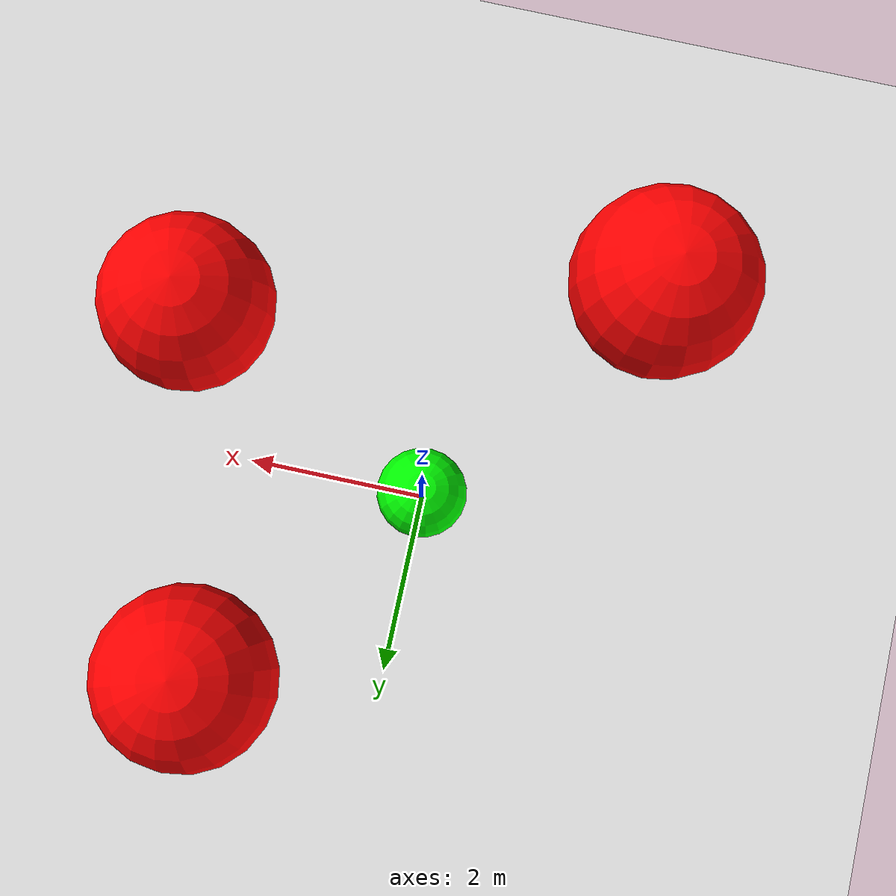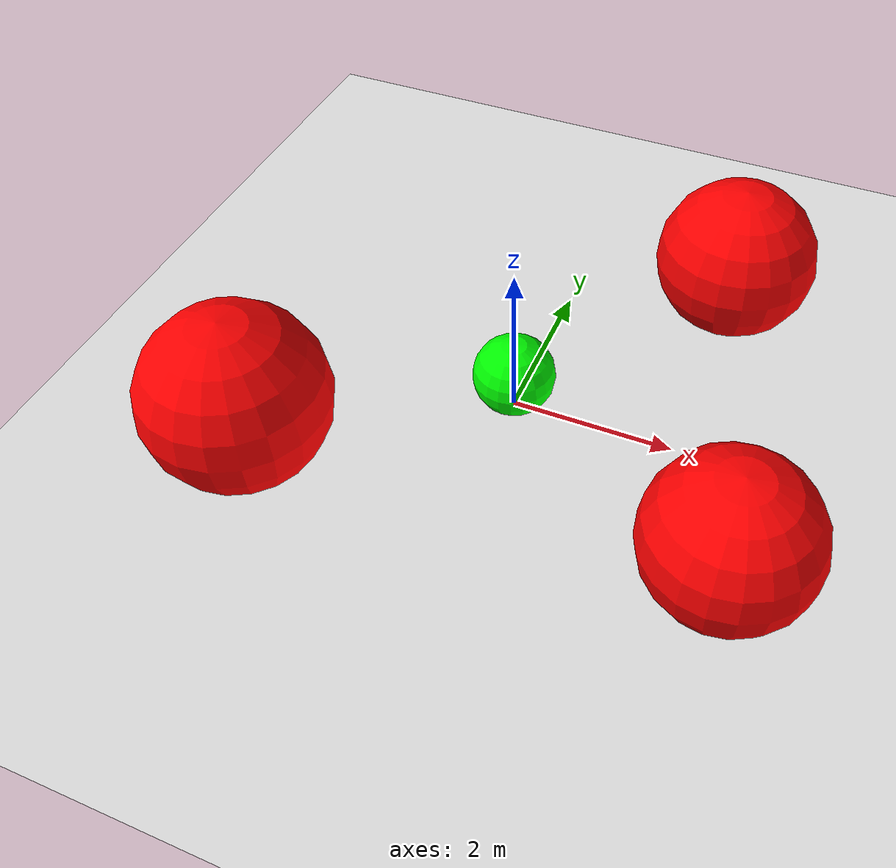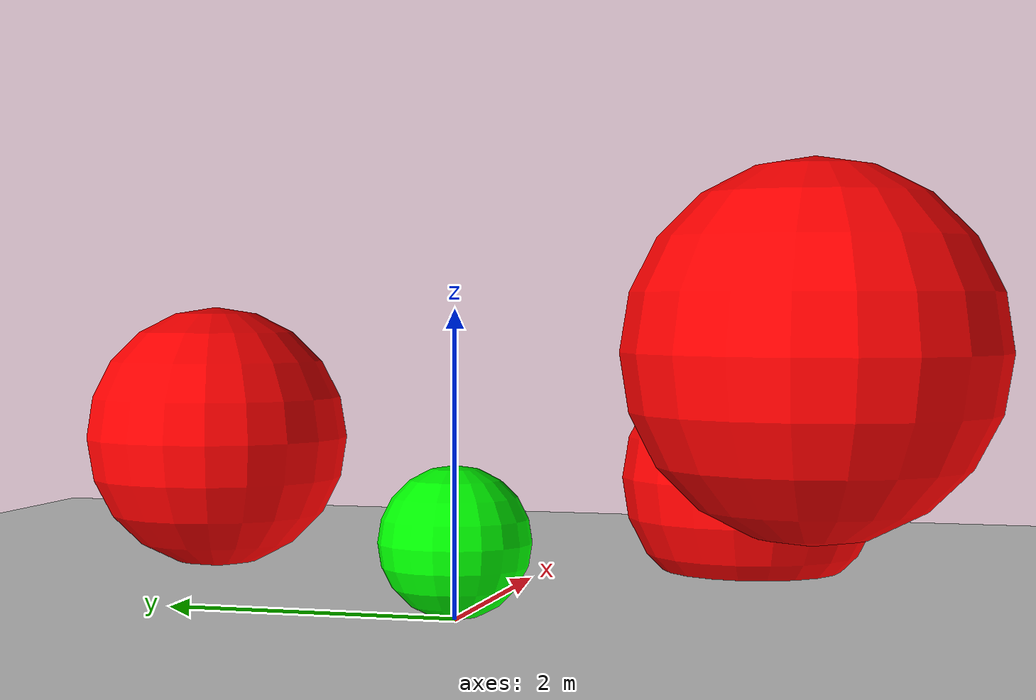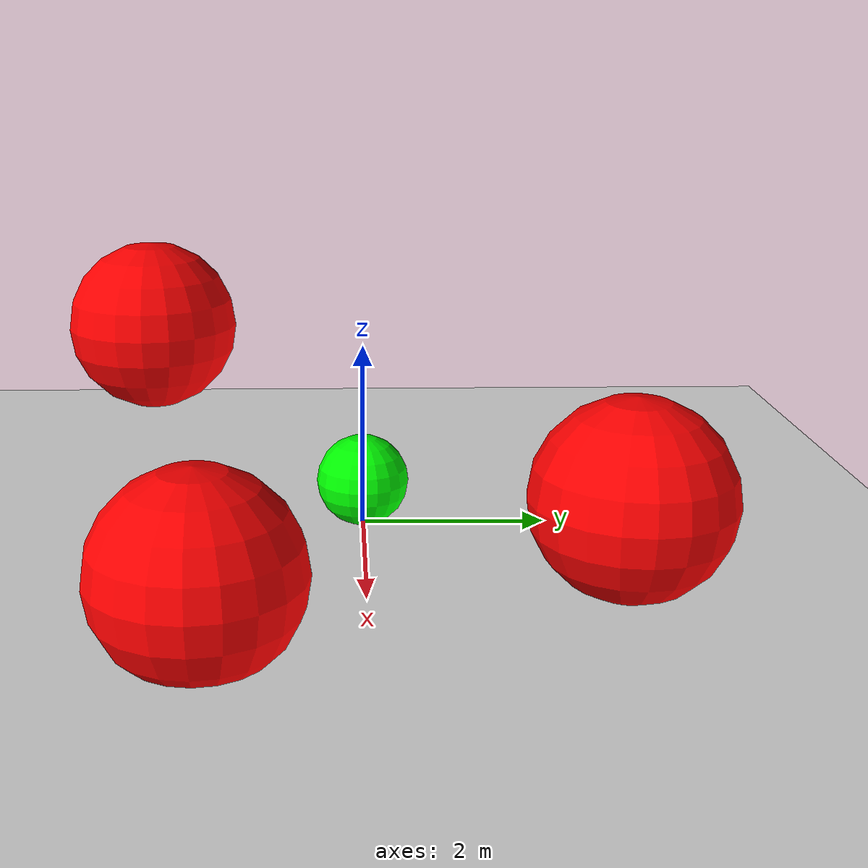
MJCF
<mujoco model="robot_with_obstacles">
  <compiler angle="radian"/>

  <visual>
    <scale framelength="0.8" framewidth="0.05"/>
  </visual>

  <worldbody>
    <geom name="floor" size="0 0 1" type="plane" friction="1 0.5 0.5" rgba="0.9 0.9 0.9 1"/>
    <camera name="overhead" pos="0 -5 4" quat="0.707107 -0.707107 0 0"/>

    <body name="robot_body" pos="0 0 0.5">
      <joint name="x_joint" pos="0 0 0" axis="1 0 0" type="slide"/>
      <joint name="y_joint" pos="0 0 0" axis="0 1 0" type="slide"/>
      <joint name="z_joint" pos="0 0 0" axis="0 0 1" type="slide"/>

      <geom name="robot_geom" size="0.5" mass="1" rgba="0 1 0 1"/>
      <site name="robot_center_site" pos="0 0 0" size="0.1" rgba="1 0 0 0.5"/>

        <!-- Robot body coordinate frame -->
        <geom name="robot_x_axis" type="cylinder" size="0.002 0.15" pos="0.15 0 0" euler="0 90 0"
            rgba="1 0 0 0.8" contype="0" conaffinity="0" />
        <geom name="robot_y_axis" type="cylinder" size="0.002 0.15" pos="0 0.15 0" euler="90 0 0"
            rgba="0 1 0 0.8" contype="0" conaffinity="0" />
        <geom name="robot_z_axis" type="cylinder" size="0.002 0.15" pos="0 0 0.15" euler="0 0 0"
            rgba="0 0 1 0.8" contype="0" conaffinity="0" />

        <!-- Arrow tips for the axes -->
        <geom name="robot_x_tip" type="sphere" size="0.01" pos="0.3 0 0"
            rgba="1 0 0 0.8" contype="0" conaffinity="0"/>
        <geom name="robot_y_tip" type="sphere" size="0.01" pos="0 0.3 0"
            rgba="0 1 0 0.8" contype="0" conaffinity="0"/>
        <geom name="robot_z_tip" type="sphere" size="0.01" pos="0 0 0.3"
            rgba="0 0 1 0.8" contype="0" conaffinity="0"/>

    </body>

    <body name="obs1_body" pos="2 2.5 1.0">
      <geom name="obstacle_1" size="1.0" mass="0" rgba="1 0 0 1"/>
    </body>
    <body name="obs2_body" pos="-2 -2.5 1.8">
      <geom name="obstacle_2" size="1.0" mass="0" rgba="1 0 0 1"/>
    </body>
    <body name="obs3_body" pos="3 -1.5 0.7">
      <geom name="obstacle_3" size="1.0" mass="0" rgba="1 0 0 1"/>
    </body>
  </worldbody>

  <actuator>
    <general name="force_x" joint="x_joint" ctrlrange="-10 10"/>
    <general name="force_y" joint="y_joint" ctrlrange="-10 10"/>
    <general name="force_z" joint="z_joint" ctrlrange="-10 10"/>
  </actuator>
</mujoco>
